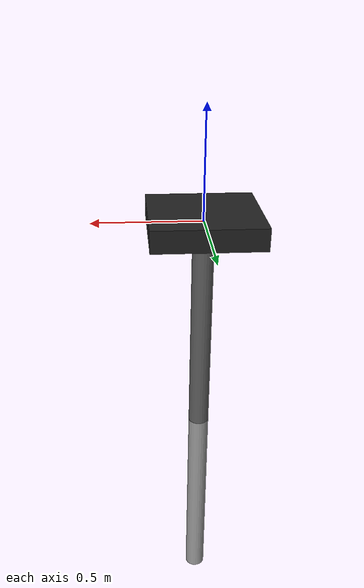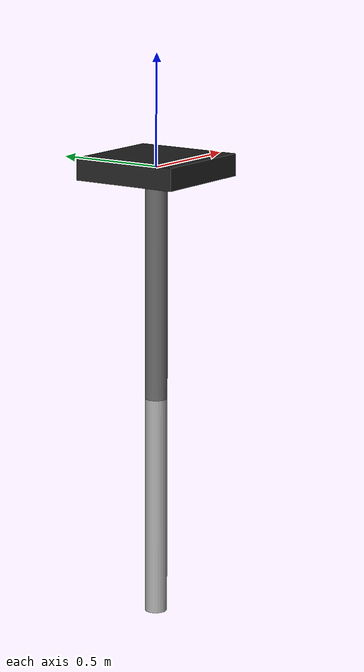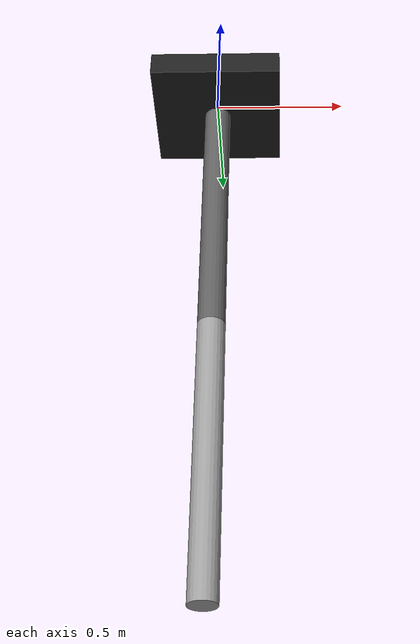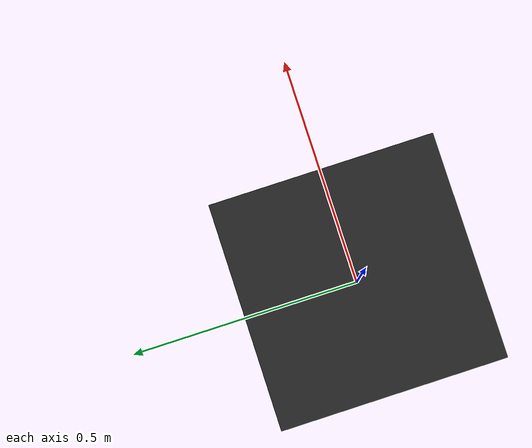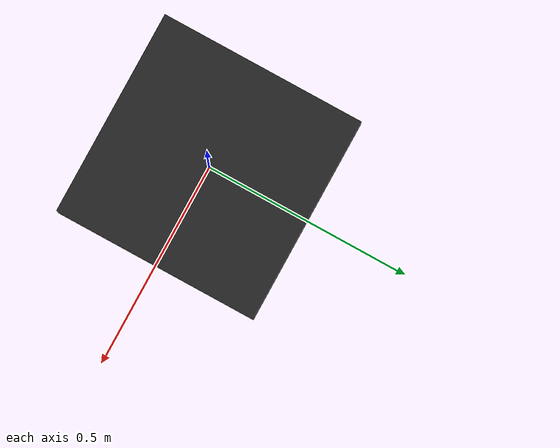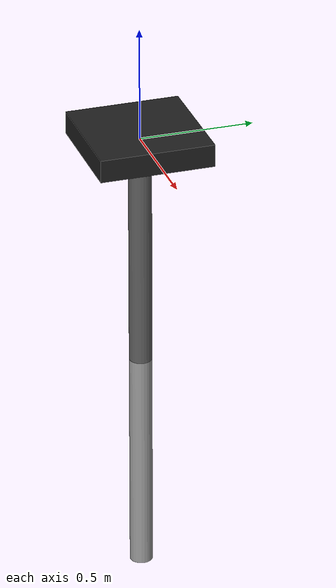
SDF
<sdf version='1.11'>
  <model name='linkage'>
    <link name='link A'>
      <inertial>
        <pose>0 0 0 0 0 0</pose>
        <mass>0.5</mass>
        <inertia>
          <ixx>0.5</ixx>
          <ixy>0</ixy>
          <ixz>0</ixz>
          <iyy>0.5</iyy>
          <iyz>0</iyz>
          <izz>0.5</izz>
        </inertia>
      </inertial>
      <visual name='link A_visual'>
        <pose>0 0 0 0 0 0</pose>
        <geometry>
          <box>
            <size>0.5 0.5 0.10000000000000001</size>
          </box>
        </geometry>
        <material>
          <diffuse>0.125 0.125 0.125 1</diffuse>
          <ambient>0.125 0.125 0.125 1</ambient>
        </material>
      </visual>
    </link>
    <joint name='joint A' type='revolute'>
      <pose relative_to='link A'>0 0 -0.050000000000000003 0 0 0</pose>
      <parent>link A</parent>
      <child>link B</child>
      <axis>
        <xyz>0 1 0</xyz>
        <limit>
          <lower>-inf</lower>
          <upper>inf</upper>
        </limit>
        <dynamics>
          <spring_reference>0</spring_reference>
          <spring_stiffness>0</spring_stiffness>
        </dynamics>
      </axis>
    </joint>
    <link name='link B'>
      <pose relative_to='joint A'>0 0 0 0 0 0</pose>
      <inertial>
        <pose>0 0 -0.5 0 0 0</pose>
        <mass>0.5</mass>
        <inertia>
          <ixx>0.5</ixx>
          <ixy>0</ixy>
          <ixz>0</ixz>
          <iyy>0.5</iyy>
          <iyz>0</iyz>
          <izz>0.5</izz>
        </inertia>
      </inertial>
      <visual name='link B_visual'>
        <pose>0 0 -0.5 0 0 0</pose>
        <geometry>
          <cylinder>
            <length>1</length>
            <radius>0.050000000000000003</radius>
          </cylinder>
        </geometry>
        <material>
          <diffuse>0.37500003 0.37500003 0.37500003 1</diffuse>
          <ambient>0.37500003 0.37500003 0.37500003 1</ambient>
        </material>
      </visual>
    </link>
    <joint name='joint B' type='revolute'>
      <pose relative_to='link B'>0 0 -1 0 0 0</pose>
      <parent>link B</parent>
      <child>link C</child>
      <axis>
        <xyz>0 1 0</xyz>
        <limit>
          <lower>-inf</lower>
          <upper>inf</upper>
        </limit>
        <dynamics>
          <damping>0.002</damping>
          <friction>0</friction>
          <spring_reference>0</spring_reference>
          <spring_stiffness>0</spring_stiffness>
        </dynamics>
      </axis>
    </joint>
    <link name='link C'>
      <pose relative_to='joint B'>0 0 0 0 0 0</pose>
      <inertial>
        <pose>0 0 -0.5 0 0 0</pose>
        <mass>0.5</mass>
        <inertia>
          <ixx>0.5</ixx>
          <ixy>0</ixy>
          <ixz>0</ixz>
          <iyy>0.5</iyy>
          <iyz>0</iyz>
          <izz>0.5</izz>
        </inertia>
      </inertial>
      <visual name='link C_visual'>
        <pose>0 0 -0.5 0 0 0</pose>
        <geometry>
          <cylinder>
            <length>1</length>
            <radius>0.050000000000000003</radius>
          </cylinder>
        </geometry>
        <material>
          <diffuse>0.625 0.625 0.625 1</diffuse>
          <ambient>0.625 0.625 0.625 1</ambient>
        </material>
      </visual>
    </link>
  </model>
</sdf>
